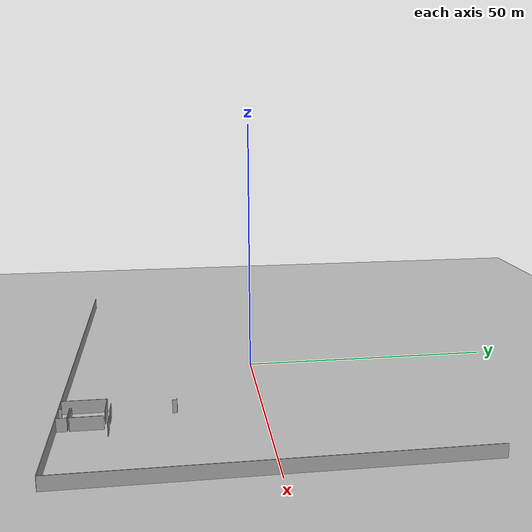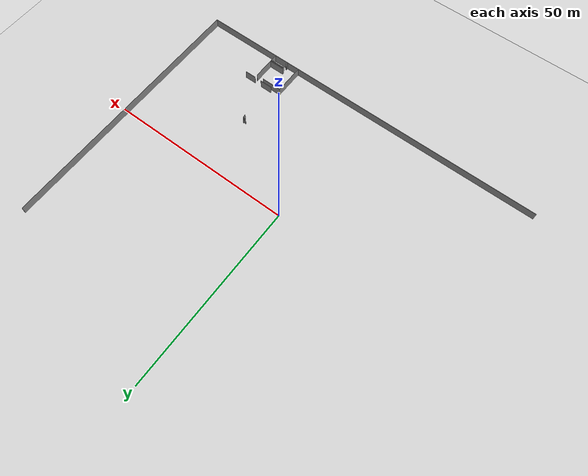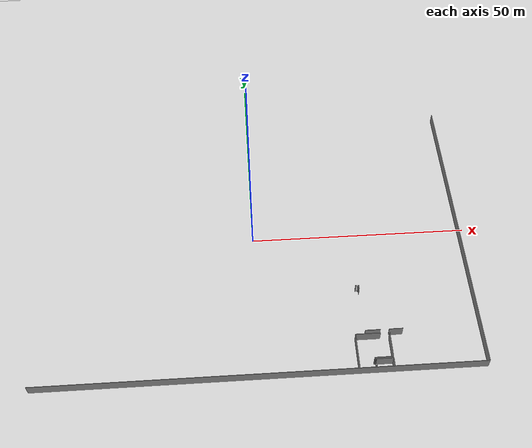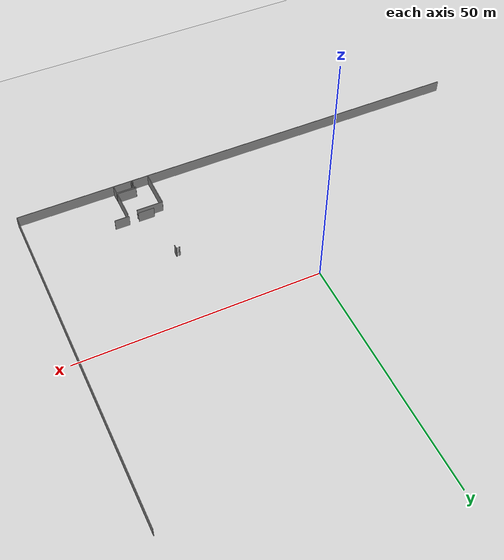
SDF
<sdf version="1.6">
 <world name="default">
  <model name="ground_plane">
   <static>1</static>
   <link name="link">
    <collision name="collision">
     <geometry><plane><normal>0 0 1</normal><size>100 100</size></plane></geometry>
     <surface><friction><ode><mu>100</mu><mu2>50</mu2></ode></friction></surface>
    </collision>
    <visual name="visual">
     <cast_shadows>0</cast_shadows>
     <geometry><plane><normal>0 0 1</normal><size>100 100</size></plane></geometry>
     <material>
      <script><uri>file://media/materials/scripts/gazebo.material</uri><name>Gazebo/Grey</name></script>
     </material>
    </visual>
   </link>
  </model>
  <model name="50053292">
   <static>1</static>
   <link name="Wall_105">
    <collision name="Wall_105_Collision">
     <geometry><box><size>0.282468295347 0.1 2.5</size></box></geometry>
     <pose>0.141234147674 0 1.25 0 0 0</pose>
    </collision>
    <visual name="Wall_105_Visual">
     <pose>0.141234147674 0 1.25 0 0 0</pose>
     <geometry><box><size>0.282468295347 0.1 2.5</size></box></geometry>
     <material>
      <script><uri>file://media/materials/scripts/gazebo.material</uri><name>Gazebo/Grey</name></script>
      <ambient>1 1 1 1</ambient>
     </material>
    </visual>
    <pose>71.1646101772 -51.4994062323 0 0 0 3.14159265359</pose>
   </link>
   <link name="Wall_133">
    <collision name="Wall_133_Collision">
     <geometry><box><size>3.04021743962 0.1 2.5</size></box></geometry>
     <pose>1.52010871981 0 1.25 0 0 0</pose>
    </collision>
    <visual name="Wall_133_Visual">
     <pose>1.52010871981 0 1.25 0 0 0</pose>
     <geometry><box><size>3.04021743962 0.1 2.5</size></box></geometry>
     <material>
      <script><uri>file://media/materials/scripts/gazebo.material</uri><name>Gazebo/Grey</name></script>
      <ambient>1 1 1 1</ambient>
     </material>
    </visual>
    <pose>79.9157929497 -63.0583797446 0 0 0 3.14159265359</pose>
   </link>
   <link name="Wall_134">
    <collision name="Wall_134_Collision">
     <geometry><box><size>3.31544621481 0.1 2.5</size></box></geometry>
     <pose>1.65772310741 0 1.25 0 0 0</pose>
    </collision>
    <visual name="Wall_134_Visual">
     <pose>1.65772310741 0 1.25 0 0 0</pose>
     <geometry><box><size>3.31544621481 0.1 2.5</size></box></geometry>
     <material>
      <script><uri>file://media/materials/scripts/gazebo.material</uri><name>Gazebo/Grey</name></script>
      <ambient>1 1 1 1</ambient>
     </material>
    </visual>
    <pose>74.9792022557 -63.0583797446 0 0 0 3.14159265359</pose>
   </link>
   <link name="Wall_135">
    <collision name="Wall_135_Collision">
     <geometry><box><size>0.835466028234 0.1 2.5</size></box></geometry>
     <pose>0.417733014117 0 1.25 0 0 0</pose>
    </collision>
    <visual name="Wall_135_Visual">
     <pose>0.417733014117 0 1.25 0 0 0</pose>
     <geometry><box><size>0.835466028234 0.1 2.5</size></box></geometry>
     <material>
      <script><uri>file://media/materials/scripts/gazebo.material</uri><name>Gazebo/Grey</name></script>
      <ambient>1 1 1 1</ambient>
     </material>
    </visual>
    <pose>71.6637560409 -52.3267436765 0 0 0 1.57079632679</pose>
   </link>
   <link name="Wall_136">
    <collision name="Wall_136_Collision">
     <geometry><box><size>0.26011468924 0.1 2.5</size></box></geometry>
     <pose>0.13005734462 0 1.25 0 0 0</pose>
    </collision>
    <visual name="Wall_136_Visual">
     <pose>0.13005734462 0 1.25 0 0 0</pose>
     <geometry><box><size>0.26011468924 0.1 2.5</size></box></geometry>
     <material>
      <script><uri>file://media/materials/scripts/gazebo.material</uri><name>Gazebo/Grey</name></script>
      <ambient>1 1 1 1</ambient>
     </material>
    </visual>
    <pose>71.6637560409 -51.4912776483 0 0 0 3.14159265359</pose>
   </link>
   <link name="Wall_140">
    <collision name="Wall_140_Collision">
     <geometry><box><size>3.43242161949 0.1 2.5</size></box></geometry>
     <pose>1.71621080975 0 1.25 0 0 0</pose>
    </collision>
    <visual name="Wall_140_Visual">
     <pose>1.71621080975 0 1.25 0 0 0</pose>
     <geometry><box><size>3.43242161949 0.1 2.5</size></box></geometry>
     <material>
      <script><uri>file://media/materials/scripts/gazebo.material</uri><name>Gazebo/Grey</name></script>
      <ambient>1 1 1 1</ambient>
     </material>
    </visual>
    <pose>72.9107316361 -71.9322533324 0 0 0 3.14159265359</pose>
   </link>
   <link name="Wall_141">
    <collision name="Wall_141_Collision">
     <geometry><box><size>8.04920333526 0.1 2.5</size></box></geometry>
     <pose>4.02460166763 0 1.25 0 0 0</pose>
    </collision>
    <visual name="Wall_141_Visual">
     <pose>4.02460166763 0 1.25 0 0 0</pose>
     <geometry><box><size>8.04920333526 0.1 2.5</size></box></geometry>
     <material>
      <script><uri>file://media/materials/scripts/gazebo.material</uri><name>Gazebo/Grey</name></script>
      <ambient>1 1 1 1</ambient>
     </material>
    </visual>
    <pose>69.4783100166 -71.9322533324 0 0 0 1.57079632679</pose>
   </link>
   <link name="Wall_142">
    <collision name="Wall_142_Collision">
     <geometry><box><size>5.45707409077 0.1 2.5</size></box></geometry>
     <pose>2.72853704539 0 1.25 0 0 0</pose>
    </collision>
    <visual name="Wall_142_Visual">
     <pose>2.72853704539 0 1.25 0 0 0</pose>
     <geometry><box><size>5.45707409077 0.1 2.5</size></box></geometry>
     <material>
      <script><uri>file://media/materials/scripts/gazebo.material</uri><name>Gazebo/Grey</name></script>
      <ambient>1 1 1 1</ambient>
     </material>
    </visual>
    <pose>69.4783100166 -63.8830499971 0 0 0 0.0</pose>
   </link>
   <link name="Wall_143">
    <collision name="Wall_143_Collision">
     <geometry><box><size>5.80685722269 0.1 2.5</size></box></geometry>
     <pose>2.90342861135 0 1.25 0 0 0</pose>
    </collision>
    <visual name="Wall_143_Visual">
     <pose>2.90342861135 0 1.25 0 0 0</pose>
     <geometry><box><size>5.80685722269 0.1 2.5</size></box></geometry>
     <material>
      <script><uri>file://media/materials/scripts/gazebo.material</uri><name>Gazebo/Grey</name></script>
      <ambient>1 1 1 1</ambient>
     </material>
    </visual>
    <pose>76.8923407147 -63.8830499971 0 0 0 -1.57079632679</pose>
   </link>
   <link name="Wall_144">
    <collision name="Wall_144_Collision">
     <geometry><box><size>3.99253186341 0.1 2.5</size></box></geometry>
     <pose>1.99626593171 0 1.25 0 0 0</pose>
    </collision>
    <visual name="Wall_144_Visual">
     <pose>1.99626593171 0 1.25 0 0 0</pose>
     <geometry><box><size>3.99253186341 0.1 2.5</size></box></geometry>
     <material>
      <script><uri>file://media/materials/scripts/gazebo.material</uri><name>Gazebo/Grey</name></script>
      <ambient>1 1 1 1</ambient>
     </material>
    </visual>
    <pose>76.8923407147 -69.6899072198 0 0 0 3.14159265359</pose>
   </link>
   <link name="Wall_145">
    <collision name="Wall_145_Collision">
     <geometry><box><size>0.466758536601 0.1 2.5</size></box></geometry>
     <pose>0.2333792683 0 1.25 0 0 0</pose>
    </collision>
    <visual name="Wall_145_Visual">
     <pose>0.2333792683 0 1.25 0 0 0</pose>
     <geometry><box><size>0.466758536601 0.1 2.5</size></box></geometry>
     <material>
      <script><uri>file://media/materials/scripts/gazebo.material</uri><name>Gazebo/Grey</name></script>
      <ambient>1 1 1 1</ambient>
     </material>
    </visual>
    <pose>72.8998088513 -69.6899072198 0 0 0 -1.57079632679</pose>
   </link>
   <link name="Wall_146">
    <collision name="Wall_146_Collision">
     <geometry><box><size>0.55310559553 0.1 2.5</size></box></geometry>
     <pose>0.276552797765 0 1.25 0 0 0</pose>
    </collision>
    <visual name="Wall_146_Visual">
     <pose>0.276552797765 0 1.25 0 0 0</pose>
     <geometry><box><size>0.55310559553 0.1 2.5</size></box></geometry>
     <material>
      <script><uri>file://media/materials/scripts/gazebo.material</uri><name>Gazebo/Grey</name></script>
      <ambient>1 1 1 1</ambient>
     </material>
    </visual>
    <pose>72.8998088513 -71.3792555995 0 0 0 -1.55104694264</pose>
   </link>
   <link name="Wall_147">
    <collision name="Wall_147_Collision">
     <geometry><box><size>1.88799065213 0.1 2.5</size></box></geometry>
     <pose>0.943995326064 0 1.25 0 0 0</pose>
    </collision>
    <visual name="Wall_147_Visual">
     <pose>0.943995326064 0 1.25 0 0 0</pose>
     <geometry><box><size>1.88799065213 0.1 2.5</size></box></geometry>
     <material>
      <script><uri>file://media/materials/scripts/gazebo.material</uri><name>Gazebo/Grey</name></script>
      <ambient>1 1 1 1</ambient>
     </material>
    </visual>
    <pose>76.9124081565 -71.9092646807 0 0 0 1.57079632679</pose>
   </link>
   <link name="Wall_148">
    <collision name="Wall_148_Collision">
     <geometry><box><size>3.74105379472 0.1 2.5</size></box></geometry>
     <pose>1.87052689736 0 1.25 0 0 0</pose>
    </collision>
    <visual name="Wall_148_Visual">
     <pose>1.87052689736 0 1.25 0 0 0</pose>
     <geometry><box><size>3.74105379472 0.1 2.5</size></box></geometry>
     <material>
      <script><uri>file://media/materials/scripts/gazebo.material</uri><name>Gazebo/Grey</name></script>
      <ambient>1 1 1 1</ambient>
     </material>
    </visual>
    <pose>76.9124081565 -70.0212740285 0 0 0 3.14159265359</pose>
   </link>
   <link name="Wall_149">
    <collision name="Wall_149_Collision">
     <geometry><box><size>0.137931910408 0.1 2.5</size></box></geometry>
     <pose>0.0689659552039 0 1.25 0 0 0</pose>
    </collision>
    <visual name="Wall_149_Visual">
     <pose>0.0689659552039 0 1.25 0 0 0</pose>
     <geometry><box><size>0.137931910408 0.1 2.5</size></box></geometry>
     <material>
      <script><uri>file://media/materials/scripts/gazebo.material</uri><name>Gazebo/Grey</name></script>
      <ambient>1 1 1 1</ambient>
     </material>
    </visual>
    <pose>73.1713543618 -70.0212740285 0 0 0 -1.57079632679</pose>
   </link>
   <link name="Wall_150">
    <collision name="Wall_150_Collision">
     <geometry><box><size>0.585893096419 0.1 2.5</size></box></geometry>
     <pose>0.292946548209 0 1.25 0 0 0</pose>
    </collision>
    <visual name="Wall_150_Visual">
     <pose>0.292946548209 0 1.25 0 0 0</pose>
     <geometry><box><size>0.585893096419 0.1 2.5</size></box></geometry>
     <material>
      <script><uri>file://media/materials/scripts/gazebo.material</uri><name>Gazebo/Grey</name></script>
      <ambient>1 1 1 1</ambient>
     </material>
    </visual>
    <pose>73.1713543618 -71.3516946193 0 0 0 -1.57079632679</pose>
   </link>
   <link name="Wall_151">
    <collision name="Wall_151_Collision">
     <geometry><box><size>3.7411610082 0.1 2.5</size></box></geometry>
     <pose>1.8705805041 0 1.25 0 0 0</pose>
    </collision>
    <visual name="Wall_151_Visual">
     <pose>1.8705805041 0 1.25 0 0 0</pose>
     <geometry><box><size>3.7411610082 0.1 2.5</size></box></geometry>
     <material>
      <script><uri>file://media/materials/scripts/gazebo.material</uri><name>Gazebo/Grey</name></script>
      <ambient>1 1 1 1</ambient>
     </material>
    </visual>
    <pose>73.1713543618 -71.9375877157 0 0 0 0.0075707261756</pose>
   </link>
   <link name="Wall_375">
    <collision name="Wall_375_Collision">
     <geometry><box><size>71.9375877157 0.1 2.5</size></box></geometry>
     <pose>35.9687938578 0 1.25 0 0 0</pose>
    </collision>
    <visual name="Wall_375_Visual">
     <pose>35.9687938578 0 1.25 0 0 0</pose>
     <geometry><box><size>71.9375877157 0.1 2.5</size></box></geometry>
     <material>
      <script><uri>file://media/materials/scripts/gazebo.material</uri><name>Gazebo/Grey</name></script>
      <ambient>1 1 1 1</ambient>
     </material>
    </visual>
    <pose>97.1123205202 -71.9375877157 0 0 0 1.57079632679</pose>
   </link>
   <link name="Wall_376">
    <collision name="Wall_376_Collision">
     <geometry><box><size>97.1123205202 0.1 2.5</size></box></geometry>
     <pose>48.5561602601 0 1.25 0 0 0</pose>
    </collision>
    <visual name="Wall_376_Visual">
     <pose>48.5561602601 0 1.25 0 0 0</pose>
     <geometry><box><size>97.1123205202 0.1 2.5</size></box></geometry>
     <material>
      <script><uri>file://media/materials/scripts/gazebo.material</uri><name>Gazebo/Grey</name></script>
      <ambient>1 1 1 1</ambient>
     </material>
    </visual>
    <pose>97.1123205202 -71.9375877157 0 0 0 3.14159265359</pose>
   </link>
   <pose>-48.55 35.9875877157 0 0 0 0</pose>
  </model>
 </world>
</sdf>
